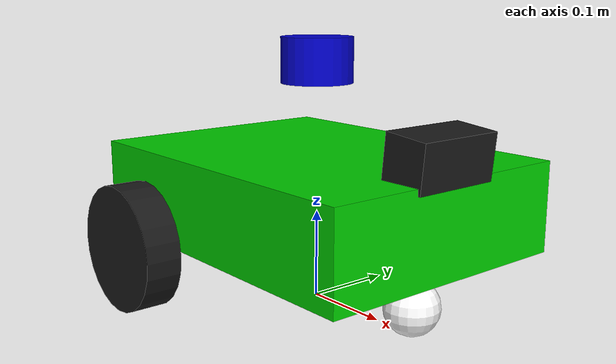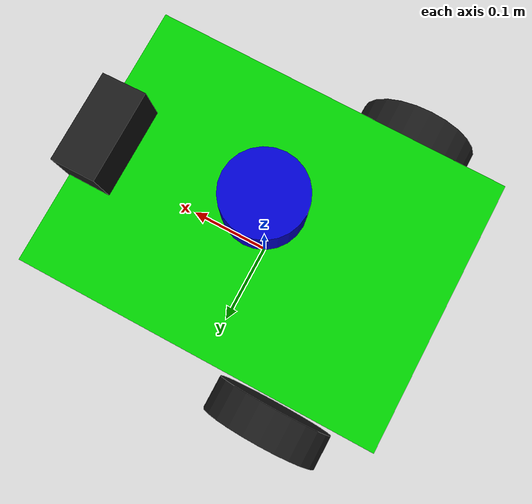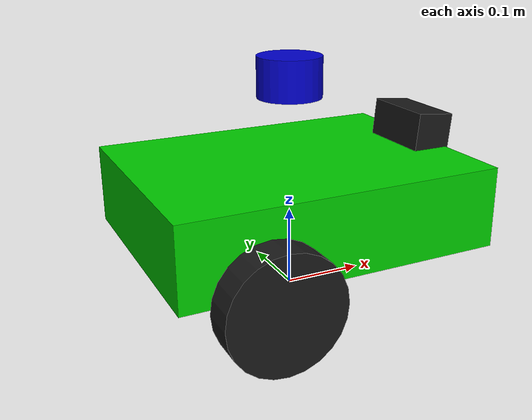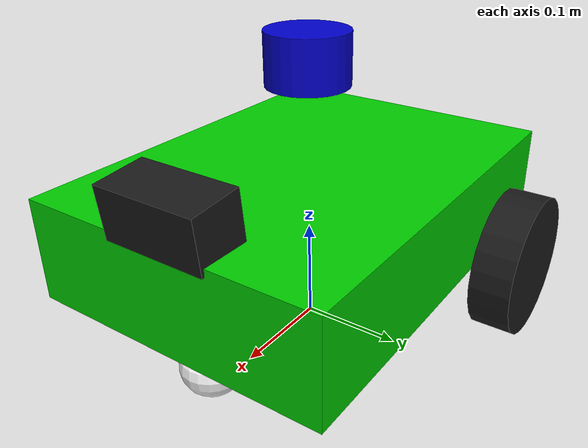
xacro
<?xml version="1.0"?>
<robot xmlns:xacro="http://www.ros.org/wiki/xacro" name="lawn_mower_bot">

    <xacro:property name="chassis_mass" value="2.0"/> <xacro:property name="wheel_mass" value="0.5"/>
    <xacro:property name="wheel_radius" value="0.07"/>
    <xacro:property name="wheel_separation" value="0.36"/>
    <xacro:property name="wheel_width" value="0.04"/>

    <link name="base_link">
        <visual>
            <origin xyz="0 0 0.05" rpy="0 0 0"/>
            <geometry>
                <box size="0.4 0.3 0.1"/>
            </geometry>
            <material name="green">
                <color rgba="0.0 0.8 0.0 1.0"/>
            </material>
        </visual>
        <collision>
            <origin xyz="0 0 0.05" rpy="0 0 0"/>
            <geometry>
                <box size="0.4 0.3 0.1"/>
            </geometry>
        </collision>
        <inertial>
            <origin xyz="0 0 0.05" rpy="0 0 0"/>
            <mass value="${chassis_mass}"/>
            <inertia ixx="0.083" ixy="0.0" ixz="0.0" iyy="0.142" iyz="0.0" izz="0.208"/>
        </inertial>
    </link>

    <link name="base_footprint">
        <inertial>
            <mass value="0.0001"/>
            <inertia ixx="0.0001" ixy="0" ixz="0" iyy="0.0001" iyz="0" izz="0.0001"/>
        </inertial>
    </link>

    <joint name="base_footprint_joint" type="fixed">
        <parent link="base_footprint"/>
        <child link="base_link"/>
        <origin xyz="0 0 ${wheel_radius}" rpy="0 0 0"/>
    </joint>

    <link name="imu_link">
      <inertial>
        <mass value="0.01"/>
        <inertia ixx="0.001" ixy="0" ixz="0" iyy="0.001" iyz="0" izz="0.001"/>
      </inertial>
    </link>
    <joint name="imu_joint" type="fixed">
      <parent link="base_link"/>
      <child link="imu_link"/>
    </joint>

    <link name="caster_front_wheel">
        <visual>
            <geometry>
                <sphere radius="0.03"/>
            </geometry>
            <material name="white">
                <color rgba="1.0 1.0 1.0 1.0"/>
            </material>
        </visual>
        <collision>
            <geometry>
                <sphere radius="0.03"/>
            </geometry>
        </collision>
        <inertial>
            <mass value="0.1"/>
            <inertia ixx="0.0001" ixy="0" ixz="0" iyy="0.0001" iyz="0" izz="0.0001"/>
        </inertial>
    </link>

    <joint name="caster_front_joint" type="fixed">
        <parent link="base_link"/>
        <child link="caster_front_wheel"/>
        <origin xyz="0.15 0 -0.04" rpy="0 0 0"/>
    </joint>

    <gazebo reference="caster_front_wheel">
        <mu1>0.0</mu1>
        <mu2>0.0</mu2>
        <material>Gazebo/White</material>
    </gazebo>

    <xacro:macro name="wheel_link" params="prefix">
        <link name="${prefix}_wheel">
            <visual>
                <geometry>
                    <cylinder radius="${wheel_radius}" length="${wheel_width}"/>
                </geometry>
                <origin rpy="1.5707 0 0" xyz="0 0 0"/>
                <material name="black">
                    <color rgba="0.1 0.1 0.1 1.0"/>
                </material>
            </visual>
            <collision>
                <geometry>
                    <cylinder radius="${wheel_radius}" length="${wheel_width}"/>
                </geometry>
                 <origin rpy="1.5707 0 0" xyz="0 0 0"/>
            </collision>
            <inertial>
                <mass value="${wheel_mass}"/>
                <inertia ixx="0.001" ixy="0.0" ixz="0.0" iyy="0.001" iyz="0.0" izz="0.001"/>
            </inertial>
        </link>
    </xacro:macro>

    <xacro:wheel_link prefix="left"/>
    <xacro:wheel_link prefix="right"/>

    <joint name="left_wheel_joint" type="continuous">
        <parent link="base_link"/>
        <child link="left_wheel"/>
        <origin xyz="-0.1 ${wheel_separation/2} 0" rpy="0 0 0"/>
        <axis xyz="0 1 0"/>
        <limit effort="50.0" velocity="10.0"/>
    </joint>

    <joint name="right_wheel_joint" type="continuous">
        <parent link="base_link"/>
        <child link="right_wheel"/>
        <origin xyz="-0.1 -${wheel_separation/2} 0" rpy="0 0 0"/>
        <axis xyz="0 1 0"/>
        <limit effort="50.0" velocity="10.0"/>
    </joint>

    <gazebo reference="left_wheel">
        <mu1>1.0</mu1>
        <mu2>1.0</mu2>
    </gazebo>
    <gazebo reference="right_wheel">
        <mu1>1.0</mu1>
        <mu2>1.0</mu2>
    </gazebo>

    <link name="camera_link">
        <visual>
            <geometry>
                <box size="0.05 0.1 0.05"/>
            </geometry>
            <material name="black">
                <color rgba="0.1 0.1 0.1 1.0"/>
            </material>
        </visual>
        <collision>
            <geometry>
                <box size="0.05 0.1 0.05"/>
            </geometry>
        </collision>
        <inertial>
            <mass value="0.1"/>
            <inertia ixx="0.0001" ixy="0" ixz="0" iyy="0.0001" iyz="0" izz="0.0001"/>
        </inertial>
    </link>

    <!-- Mount camera at front and top of chassis block -->
    <joint name="camera_joint" type="fixed">
        <parent link="base_link"/>
        <child link="camera_link"/>
        <origin xyz="0.18 0 0.12" rpy="0 0.1 0"/> <!-- pitched slightly down -->
    </joint>

    <gazebo reference="camera_link">
        <sensor type="camera" name="front_camera">
            <update_rate>30.0</update_rate>
            <always_on>true</always_on>
            <visualize>true</visualize>
            <topic>/camera/image_raw</topic>
            <camera>
                <horizontal_fov>1.047198</horizontal_fov> <!-- 60 degrees -->
                <image>
                    <width>640</width>
                    <height>480</height>
                    <format>R8G8B8</format>
                </image>
                <clip>
                    <near>0.1</near>
                    <far>20.0</far>
                </clip>
            </camera>
        </sensor>
    </gazebo>

    <!-- LIDAR SENSOR -->
    <link name="lidar_link">
        <visual>
            <geometry>
                <cylinder radius="0.04" length="0.05"/>
            </geometry>
            <material name="blue">
                <color rgba="0.0 0.0 0.8 1.0"/>
            </material>
        </visual>
        <collision>
            <geometry>
                <cylinder radius="0.04" length="0.05"/>
            </geometry>
        </collision>
        <inertial>
            <mass value="0.2"/>
            <inertia ixx="0.0001" ixy="0" ixz="0" iyy="0.0001" iyz="0" izz="0.0001"/>
        </inertial>
    </link>

    <joint name="lidar_joint" type="fixed">
        <parent link="base_link"/>
        <child link="lidar_link"/>
        <origin xyz="0 0 0.20" rpy="0 0 0"/>
    </joint>

    <gazebo reference="lidar_link">
        <sensor name='gpu_lidar' type='gpu_lidar'>
            <gz_frame_id>lidar_link</gz_frame_id>
            <topic>scan</topic>
            <update_rate>10</update_rate>
            <ray>
                <scan>
                    <horizontal>
                        <samples>640</samples>
                        <resolution>1</resolution>
                        <min_angle>-3.14159</min_angle>
                        <max_angle>3.14159</max_angle>
                    </horizontal>
                </scan>
                <range>
                    <min>0.15</min>
                    <max>12.0</max>
                    <resolution>0.01</resolution>
                </range>
                <noise>
                    <type>gaussian</type>
                    <mean>0.0</mean>
                    <stddev>0.01</stddev>
                </noise>
            </ray>
            <always_on>1</always_on>
            <visualize>false</visualize>
        </sensor>
    </gazebo>

    <gazebo>
        <plugin name="gz::sim::systems::Sensors" filename="gz-sim-sensors-system">
             <render_engine>ogre2</render_engine>
        </plugin>
        <plugin name="gz::sim::systems::DiffDrive" filename="gz-sim-diff-drive-system">
            <left_joint>left_wheel_joint</left_joint>
            <right_joint>right_wheel_joint</right_joint>
            <wheel_separation>${wheel_separation}</wheel_separation>
            <wheel_radius>${wheel_radius}</wheel_radius>
            <topic>/cmd_vel</topic>
            <odom_topic>/odom</odom_topic>
            <frame_id>odom</frame_id>
            <child_frame_id>base_footprint</child_frame_id>
            <publish_odom>true</publish_odom>
            <publish_odom_tf>false</publish_odom_tf>
            <publish_wheel_tf>true</publish_wheel_tf>
        </plugin>
        <plugin name="gz::sim::systems::Imu" filename="gz-sim-imu-system">
            <topic>/imu/data</topic>
            <frame_id>imu_link</frame_id>
        </plugin>
        <plugin name="gz::sim::systems::NavSat" filename="gz-sim-navsat-system">
            <topic>/gps/fix</topic>
            <frame_id>base_link</frame_id>
        </plugin>
        <plugin name="gz::sim::systems::JointStatePublisher" filename="gz-sim-joint-state-publisher-system">
            <topic>/joint_states</topic>
        </plugin>

        <plugin filename="gz-sim-particle-emitter-system" name="gz::sim::systems::ParticleEmitter">
        </plugin>

        <!-- The Projector plugin allows us to project a texture onto the environment -->
        <plugin filename="gz-sim-projector-system" name="gz::sim::systems::Projector">
        </plugin>
    </gazebo>

    <!-- MOWED GRASS PROJECTOR (Paints the ground dark green) -->
    <gazebo reference="base_link">
        <projector name="mower_painter">
            <pose>0 0 0.1 0 1.5707 0</pose>
            <fov>1.0</fov>
            <near_clip>0.01</near_clip>
            <far_clip>1.0</far_clip>
            <visibility_flags>0x01</visibility_flags>
        </projector>
    </gazebo>

    <!-- GRASS PARTICLE EMITTER (Simulates the blade cutting grass) -->
    <link name="blade_link">
        <pose>0 0 0.02 0 0 0</pose>
    </link>
    <joint name="blade_joint" type="fixed">
        <parent link="base_link" />
        <child link="blade_link" />
        <origin xyz="-0.1 0 -0.05" rpy="0 0 0" />
    </joint>

    <gazebo reference="blade_link">
        <particle_emitter name="grass_emitter" type="box">
            <emitting>false</emitting>
            <size>0.3 0.2 0</size>
            <particle_size>0.02 0.02 0.02</particle_size>
            <lifetime>2.0</lifetime>
            <min_velocity>0.1</min_velocity>
            <max_velocity>0.3</max_velocity>
            <rate>200</rate>
            <scale_rate>0</scale_rate>
            <scatter_ratio>0.2</scatter_ratio>
            <material>
                <ambient>0.0 0.8 0.0 1.0</ambient>
                <diffuse>0.0 0.8 0.0 1.0</diffuse>
            </material>
            <topic>/mower_blade_state</topic>
        </particle_emitter>
    </gazebo>

</robot>
